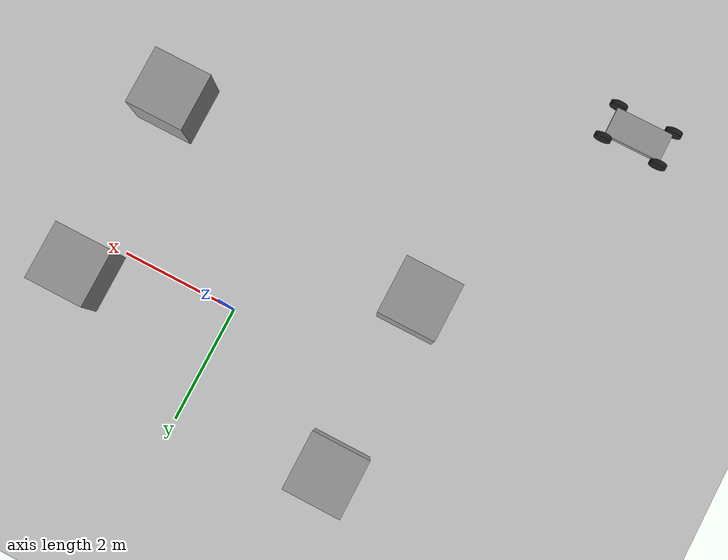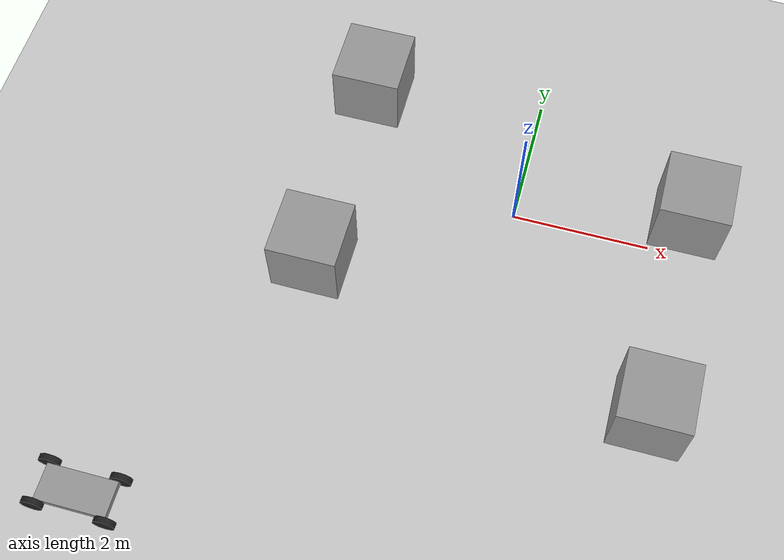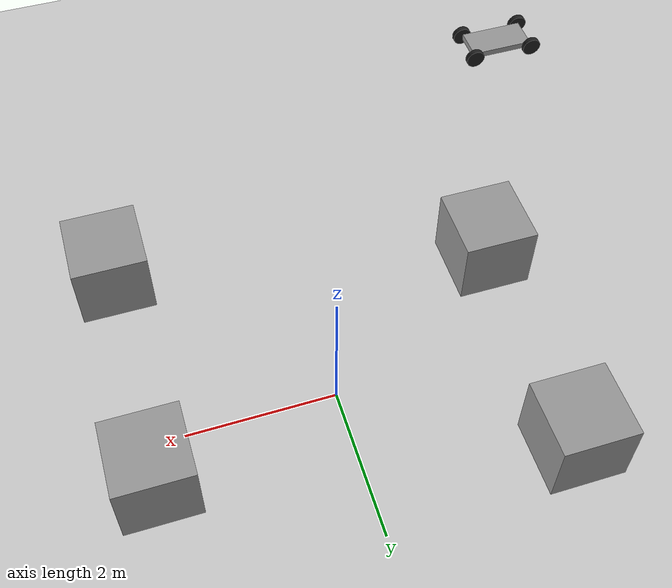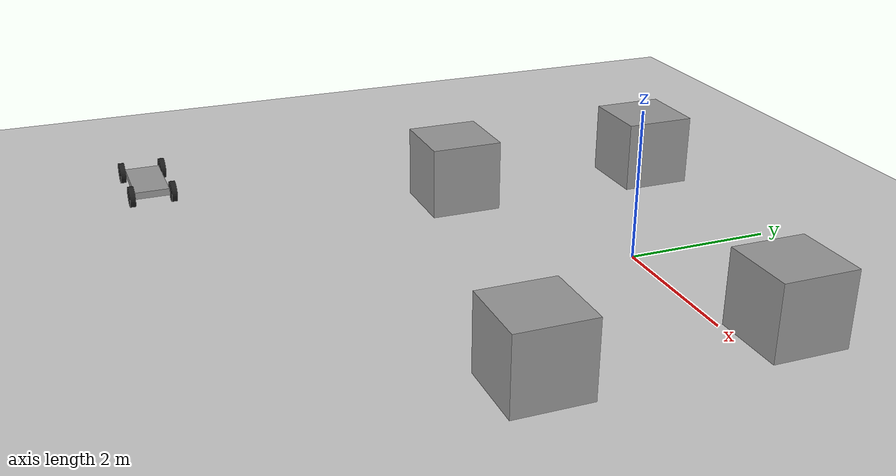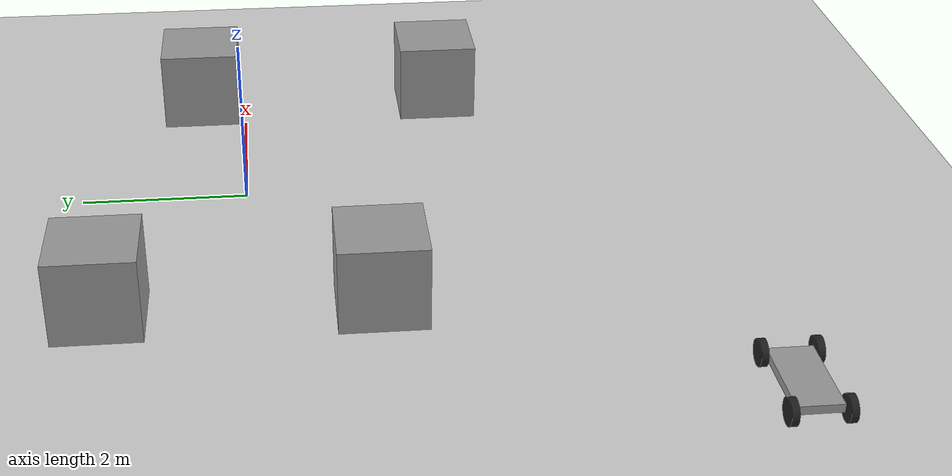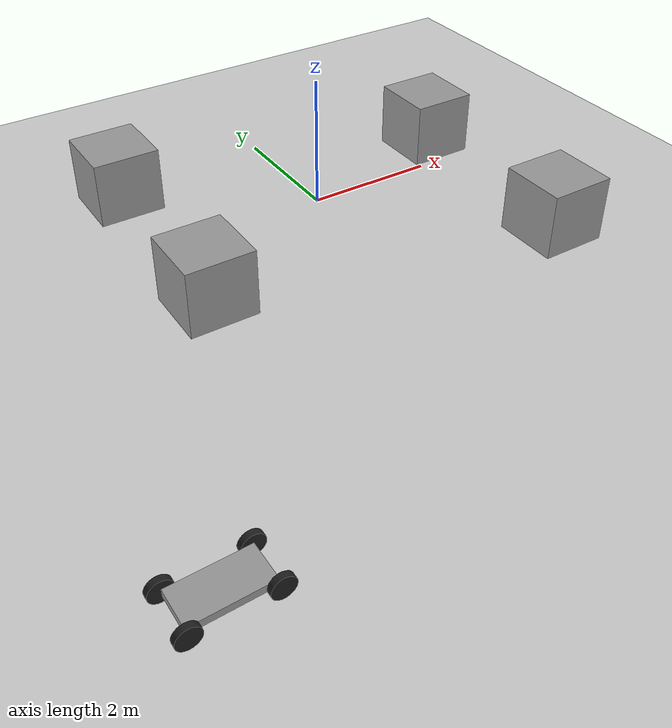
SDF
<sdf version="1.6">
 <world name="default">
  <light name="sun" type="directional">
   <pose>0 0 10 0 -0 0</pose>
   <diffuse>0.8 0.8 0.8 1</diffuse>
   <specular>0.1 0.1 0.1 1</specular>
   <attenuation>
    <range>1000</range>
    <constant>0.9</constant>
    <linear>0.01</linear>
    <quadratic>0.001</quadratic>
   </attenuation>
   <direction>-0.5 0.5 -1</direction>
  </light>
  <model name="ground_plane">
   <static>1</static>
   <link name="link">
    <collision name="collision">
     <geometry><plane><normal>0 0 1</normal><size>100 100</size></plane></geometry>
     <surface><friction><ode><mu>100</mu><mu2>50</mu2></ode></friction></surface>
    </collision>
    <visual name="visual">
     <cast_shadows>0</cast_shadows>
     <geometry><plane><normal>0 0 1</normal><size>100 100</size></plane></geometry>
     <material>
      <script><uri>file://media/materials/scripts/gazebo.material</uri><name>Gazebo/Grey</name></script>
     </material>
    </visual>
   </link>
  </model>
  <gravity>0 0 -9.8</gravity>
  <magnetic_field>6e-06 2.3e-05 -4.2e-05</magnetic_field>
  <atmosphere type="adiabatic"/>
  <physics name="default_physics" default="0" type="ode">
   <max_step_size>0.001</max_step_size>
   <real_time_factor>1</real_time_factor>
   <real_time_update_rate>1000</real_time_update_rate>
  </physics>
  <scene><ambient>0.4 0.4 0.4 1</ambient><background>0.7 0.7 0.7 1</background><shadows>1</shadows></scene>
  <spherical_coordinates>
   <surface_model>EARTH_WGS84</surface_model>
   <latitude_deg>0</latitude_deg>
   <longitude_deg>0</longitude_deg>
   <elevation>0</elevation>
   <heading_deg>0</heading_deg>
  </spherical_coordinates>
  <model name="unit_box_0">
   <pose>-2.57359 1.58269 0.499995 -1e-05 0 0</pose>
   <link name="link">
    <inertial>
     <mass>1</mass>
     <inertia>
      <ixx>0.166667</ixx>
      <ixy>0</ixy>
      <ixz>0</ixz>
      <iyy>0.166667</iyy>
      <iyz>0</iyz>
      <izz>0.166667</izz>
     </inertia>
    </inertial>
    <collision name="collision"><geometry><box><size>1 1 1</size></box></geometry></collision>
    <visual name="visual">
     <geometry><box><size>1 1 1</size></box></geometry>
     <material>
      <script><name>Gazebo/Grey</name><uri>file://media/materials/scripts/gazebo.material</uri></script>
     </material>
    </visual>
   </link>
  </model>
  <model name="unit_box_1">
   <pose>-2.61327 -1.4819 0.499995 0 1e-05 0</pose>
   <link name="link">
    <inertial>
     <mass>1</mass>
     <inertia>
      <ixx>0.166667</ixx>
      <ixy>0</ixy>
      <ixz>0</ixz>
      <iyy>0.166667</iyy>
      <iyz>0</iyz>
      <izz>0.166667</izz>
     </inertia>
    </inertial>
    <collision name="collision"><geometry><box><size>1 1 1</size></box></geometry></collision>
    <visual name="visual">
     <geometry><box><size>1 1 1</size></box></geometry>
     <material>
      <script><name>Gazebo/Grey</name><uri>file://media/materials/scripts/gazebo.material</uri></script>
     </material>
    </visual>
   </link>
  </model>
  <model name="unit_box_2">
   <pose>2.47594 0.57254 0.499995 -1e-05 0 0</pose>
   <link name="link">
    <inertial>
     <mass>1</mass>
     <inertia>
      <ixx>0.166667</ixx>
      <ixy>0</ixy>
      <ixz>0</ixz>
      <iyy>0.166667</iyy>
      <iyz>0</iyz>
      <izz>0.166667</izz>
     </inertia>
    </inertial>
    <collision name="collision"><geometry><box><size>1 1 1</size></box></geometry></collision>
    <visual name="visual">
     <geometry><box><size>1 1 1</size></box></geometry>
     <material>
      <script><name>Gazebo/Grey</name><uri>file://media/materials/scripts/gazebo.material</uri></script>
     </material>
    </visual>
   </link>
  </model>
  <model name="unit_box_3">
   <pose>2.43411 -2.58916 0.499995 0 1e-05 0</pose>
   <link name="link">
    <inertial>
     <mass>1</mass>
     <inertia>
      <ixx>0.166667</ixx>
      <ixy>0</ixy>
      <ixz>0</ixz>
      <iyy>0.166667</iyy>
      <iyz>0</iyz>
      <izz>0.166667</izz>
     </inertia>
    </inertial>
    <collision name="collision"><geometry><box><size>1 1 1</size></box></geometry></collision>
    <visual name="visual">
     <geometry><box><size>1 1 1</size></box></geometry>
     <material>
      <script><name>Gazebo/Grey</name><uri>file://media/materials/scripts/gazebo.material</uri></script>
     </material>
    </visual>
   </link>
  </model>
  <model name="cart_front_steer">
   <link name="chassis">
    <pose>0 0 0.15 0 -0 0</pose>
    <inertial>
     <pose>0.1 0 0 0 -0 0</pose>
     <mass>10</mass>
     <inertia>
      <ixx>0.216667</ixx>
      <iyy>0.841667</iyy>
      <izz>1.04167</izz>
      <ixy>0</ixy>
      <ixz>0</ixz>
      <iyz>0</iyz>
     </inertia>
    </inertial>
    <collision name="collision"><geometry><box><size>1 0.5 0.1</size></box></geometry></collision>
    <visual name="visual">
     <geometry><box><size>1 0.5 0.1</size></box></geometry>
     <material>
      <script><uri>file://media/materials/scripts/gazebo.material</uri><name>Gazebo/Grey</name></script>
     </material>
    </visual>
   </link>
   <link name="wheel_front_left">
    <pose>0.5 0.298 0.15 -1.5708 -0.087266 0</pose>
    <inertial>
     <mass>0.5</mass>
     <inertia>
      <ixx>0.00307917</ixx>
      <iyy>0.00307917</iyy>
      <izz>0.005625</izz>
      <ixy>0</ixy>
      <ixz>0</ixz>
      <iyz>0</iyz>
     </inertia>
    </inertial>
    <collision name="collision">
     <geometry><cylinder><radius>0.15</radius><length>0.08</length></cylinder></geometry>
    </collision>
    <visual name="visual">
     <geometry><cylinder><radius>0.15</radius><length>0.08</length></cylinder></geometry>
     <material>
      <script><uri>file://media/materials/scripts/gazebo.material</uri><name>Gazebo/Black</name></script>
     </material>
    </visual>
   </link>
   <joint name="wheel_front_left_steer_spin" type="universal">
    <parent>chassis</parent>
    <child>wheel_front_left</child>
    <axis>
     <xyz>0 -1 0</xyz>
     <limit><lower>-0.610865</lower><upper>0.610865</upper></limit>
     <use_parent_model_frame>0</use_parent_model_frame>
     <dynamics><spring_reference>0</spring_reference><spring_stiffness>0</spring_stiffness></dynamics>
    </axis>
    <axis2>
     <xyz>0 0 1</xyz>
     <use_parent_model_frame>0</use_parent_model_frame>
     <dynamics><spring_reference>0</spring_reference><spring_stiffness>0</spring_stiffness></dynamics>
    </axis2>
   </joint>
   <link name="wheel_front_right">
    <pose>0.5 -0.298 0.15 -1.5708 -0.087266 0</pose>
    <inertial>
     <mass>0.5</mass>
     <inertia>
      <ixx>0.00307917</ixx>
      <iyy>0.00307917</iyy>
      <izz>0.005625</izz>
      <ixy>0</ixy>
      <ixz>0</ixz>
      <iyz>0</iyz>
     </inertia>
    </inertial>
    <collision name="collision">
     <geometry><cylinder><radius>0.15</radius><length>0.08</length></cylinder></geometry>
    </collision>
    <visual name="visual">
     <geometry><cylinder><radius>0.15</radius><length>0.08</length></cylinder></geometry>
     <material>
      <script><uri>file://media/materials/scripts/gazebo.material</uri><name>Gazebo/Black</name></script>
     </material>
    </visual>
   </link>
   <joint name="wheel_front_right_steer_spin" type="universal">
    <parent>chassis</parent>
    <child>wheel_front_right</child>
    <axis>
     <xyz>0 -1 0</xyz>
     <limit><lower>-0.610865</lower><upper>0.610865</upper></limit>
     <use_parent_model_frame>0</use_parent_model_frame>
     <dynamics><spring_reference>0</spring_reference><spring_stiffness>0</spring_stiffness></dynamics>
    </axis>
    <axis2>
     <xyz>0 0 1</xyz>
     <use_parent_model_frame>0</use_parent_model_frame>
     <dynamics><spring_reference>0</spring_reference><spring_stiffness>0</spring_stiffness></dynamics>
    </axis2>
   </joint>
   <link name="wheel_rear_left">
    <pose>-0.5 0.298 0.15 -1.5708 0 0</pose>
    <inertial>
     <mass>0.5</mass>
     <inertia>
      <ixx>0.00307917</ixx>
      <iyy>0.00307917</iyy>
      <izz>0.005625</izz>
      <ixy>0</ixy>
      <ixz>0</ixz>
      <iyz>0</iyz>
     </inertia>
    </inertial>
    <collision name="collision">
     <geometry><cylinder><radius>0.15</radius><length>0.08</length></cylinder></geometry>
    </collision>
    <visual name="visual">
     <geometry><cylinder><radius>0.15</radius><length>0.08</length></cylinder></geometry>
     <material>
      <script><uri>file://media/materials/scripts/gazebo.material</uri><name>Gazebo/Black</name></script>
     </material>
    </visual>
   </link>
   <joint name="wheel_rear_left_spin" type="revolute">
    <parent>chassis</parent>
    <child>wheel_rear_left</child>
    <axis>
     <xyz>0 0 1</xyz>
     <use_parent_model_frame>0</use_parent_model_frame>
     <limit><lower>-1e+16</lower><upper>1e+16</upper></limit>
     <dynamics><spring_reference>0</spring_reference><spring_stiffness>0</spring_stiffness></dynamics>
    </axis>
   </joint>
   <link name="wheel_rear_right">
    <pose>-0.5 -0.298 0.15 -1.5708 0 0</pose>
    <inertial>
     <mass>0.5</mass>
     <inertia>
      <ixx>0.00307917</ixx>
      <iyy>0.00307917</iyy>
      <izz>0.005625</izz>
      <ixy>0</ixy>
      <ixz>0</ixz>
      <iyz>0</iyz>
     </inertia>
    </inertial>
    <collision name="collision">
     <geometry><cylinder><radius>0.15</radius><length>0.08</length></cylinder></geometry>
    </collision>
    <visual name="visual">
     <geometry><cylinder><radius>0.15</radius><length>0.08</length></cylinder></geometry>
     <material>
      <script><uri>file://media/materials/scripts/gazebo.material</uri><name>Gazebo/Black</name></script>
     </material>
    </visual>
   </link>
   <joint name="wheel_rear_right_spin" type="revolute">
    <parent>chassis</parent>
    <child>wheel_rear_right</child>
    <axis>
     <xyz>0 0 1</xyz>
     <use_parent_model_frame>0</use_parent_model_frame>
     <limit><lower>-1e+16</lower><upper>1e+16</upper></limit>
     <dynamics><spring_reference>0</spring_reference><spring_stiffness>0</spring_stiffness></dynamics>
    </axis>
   </joint>
   <pose>-4.55638 -5.61457 -8e-06 2.5e-05 -1e-06 0.005997</pose>
  </model>
 </world>
</sdf>
